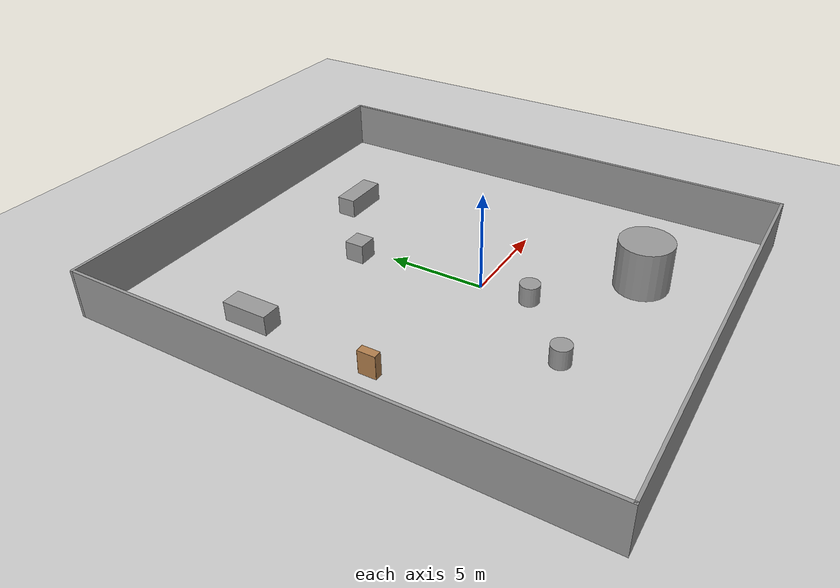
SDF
<sdf version="1.7">
 <world name="default">
  <light name="sun" type="directional">
   <cast_shadows>0</cast_shadows>
   <pose>0 0 10 0 -0 0</pose>
   <diffuse>0.8 0.8 0.8 1</diffuse>
   <specular>0.2 0.2 0.2 1</specular>
   <attenuation>
    <range>1000</range>
    <constant>0.9</constant>
    <linear>0.01</linear>
    <quadratic>0.001</quadratic>
   </attenuation>
   <direction>-0.5 0.1 -0.9</direction>
   <spot><inner_angle>0</inner_angle><outer_angle>0</outer_angle><falloff>0</falloff></spot>
  </light>
  <model name="ground_plane">
   <static>1</static>
   <link name="link">
    <collision name="collision">
     <geometry><plane><normal>0 0 1</normal><size>100 100</size></plane></geometry>
     <surface>
      <contact><collide_bitmask>65535</collide_bitmask></contact>
      <friction><ode><mu>100</mu><mu2>50</mu2></ode></friction>
     </surface>
    </collision>
    <visual name="visual">
     <cast_shadows>0</cast_shadows>
     <geometry><plane><normal>0 0 1</normal><size>100 100</size></plane></geometry>
     <material>
      <script><uri>file://media/materials/scripts/gazebo.material</uri><name>Gazebo/Grey</name></script>
     </material>
    </visual>
   </link>
  </model>
  <gravity>0 0 -9.8</gravity>
  <physics type="ode">
   <max_step_size>0.001</max_step_size>
   <real_time_factor>1</real_time_factor>
   <real_time_update_rate>1000</real_time_update_rate>
  </physics>
  <scene>
   <ambient>0.4 0.4 0.4 1</ambient>
   <background>0.7 0.7 0.7 1</background>
   <shadows>0</shadows>
   <origin_visual>0</origin_visual>
  </scene>
  <audio><device>default</device></audio>
  <spherical_coordinates>
   <surface_model>EARTH_WGS84</surface_model>
   <latitude_deg>0</latitude_deg>
   <longitude_deg>0</longitude_deg>
   <elevation>0</elevation>
   <heading_deg>0</heading_deg>
  </spherical_coordinates>
  <model name="bookshelf">
   <static>1</static>
   <link name="link">
    <inertial><mass>1</mass></inertial>
    <collision name="back">
     <pose>0 0.005 0.6 0 -0 0</pose>
     <geometry><box><size>0.9 0.01 1.2</size></box></geometry>
    </collision>
    <visual name="visual1">
     <pose>0 0.005 0.6 0 -0 0</pose>
     <geometry><box><size>0.9 0.01 1.2</size></box></geometry>
     <material>
      <script><uri>file://media/materials/scripts/gazebo.material</uri><name>Gazebo/Wood</name></script>
     </material>
    </visual>
    <collision name="left_side">
     <pose>0.45 -0.195 0.6 0 -0 0</pose>
     <geometry><box><size>0.02 0.4 1.2</size></box></geometry>
    </collision>
    <visual name="visual2">
     <pose>0.45 -0.195 0.6 0 -0 0</pose>
     <geometry><box><size>0.02 0.4 1.2</size></box></geometry>
     <material>
      <script><uri>file://media/materials/scripts/gazebo.material</uri><name>Gazebo/Wood</name></script>
     </material>
    </visual>
    <collision name="right_side">
     <pose>-0.45 -0.195 0.6 0 -0 0</pose>
     <geometry><box><size>0.02 0.4 1.2</size></box></geometry>
    </collision>
    <visual name="visual3">
     <pose>-0.45 -0.195 0.6 0 -0 0</pose>
     <geometry><box><size>0.02 0.4 1.2</size></box></geometry>
     <material>
      <script><uri>file://media/materials/scripts/gazebo.material</uri><name>Gazebo/Wood</name></script>
     </material>
    </visual>
    <collision name="bottom">
     <pose>0 -0.195 0.03 0 -0 0</pose>
     <geometry><box><size>0.88 0.4 0.06</size></box></geometry>
    </collision>
    <visual name="visual4">
     <pose>0 -0.195 0.03 0 -0 0</pose>
     <geometry><box><size>0.88 0.4 0.06</size></box></geometry>
     <material>
      <script><uri>file://media/materials/scripts/gazebo.material</uri><name>Gazebo/Wood</name></script>
     </material>
    </visual>
    <collision name="top">
     <pose>0 -0.195 1.19 0 -0 0</pose>
     <geometry><box><size>0.88 0.4 0.02</size></box></geometry>
    </collision>
    <visual name="visual5">
     <pose>0 -0.195 1.19 0 -0 0</pose>
     <geometry><box><size>0.88 0.4 0.02</size></box></geometry>
     <material>
      <script><uri>file://media/materials/scripts/gazebo.material</uri><name>Gazebo/Wood</name></script>
     </material>
    </visual>
    <collision name="low_shelf">
     <pose>0 -0.195 0.43 0 -0 0</pose>
     <geometry><box><size>0.88 0.4 0.02</size></box></geometry>
    </collision>
    <visual name="visual6">
     <pose>0 -0.195 0.43 0 -0 0</pose>
     <geometry><box><size>0.88 0.4 0.02</size></box></geometry>
     <material>
      <script><uri>file://media/materials/scripts/gazebo.material</uri><name>Gazebo/Wood</name></script>
     </material>
    </visual>
    <collision name="high_shelf">
     <pose>0 -0.195 0.8 0 -0 0</pose>
     <geometry><box><size>0.88 0.4 0.02</size></box></geometry>
    </collision>
    <visual name="visual7">
     <pose>0 -0.195 0.8 0 -0 0</pose>
     <geometry><box><size>0.88 0.4 0.02</size></box></geometry>
     <material>
      <script><uri>file://media/materials/scripts/gazebo.material</uri><name>Gazebo/Wood</name></script>
     </material>
    </visual>
   </link>
   <pose>-8.06127 1.00754 0 0 -0 1.57611</pose>
  </model>
  <model name="small_room">
   <pose>-0.133591 1.6178 0 0 -0 0</pose>
   <link name="Wall_37">
    <collision name="Wall_37_Collision">
     <geometry><box><size>26 0.15 2.5</size></box></geometry>
     <pose>0 0 1.25 0 -0 0</pose>
    </collision>
    <visual name="Wall_37_Visual">
     <pose>0 0 1.25 0 -0 0</pose>
     <geometry><box><size>26 0.15 2.5</size></box></geometry>
     <material>
      <script><uri>file://media/materials/scripts/gazebo.material</uri><name>Gazebo/Grey</name></script>
      <ambient>1 1 1 1</ambient>
     </material>
     <meta><layer>0</layer></meta>
    </visual>
    <pose>-10.925 -0 0 0 -0 -1.5708</pose>
   </link>
   <link name="Wall_38">
    <collision name="Wall_38_Collision">
     <geometry><box><size>22 0.15 2.5</size></box></geometry>
     <pose>0 0 1.25 0 -0 0</pose>
    </collision>
    <visual name="Wall_38_Visual">
     <pose>0 0 1.25 0 -0 0</pose>
     <geometry><box><size>22 0.15 2.5</size></box></geometry>
     <material>
      <script><uri>file://media/materials/scripts/gazebo.material</uri><name>Gazebo/Grey</name></script>
      <ambient>1 1 1 1</ambient>
     </material>
     <meta><layer>0</layer></meta>
    </visual>
    <pose>0 -12.925 0 0 -0 0</pose>
   </link>
   <link name="Wall_39">
    <collision name="Wall_39_Collision">
     <geometry><box><size>26 0.15 2.5</size></box></geometry>
     <pose>0 0 1.25 0 -0 0</pose>
    </collision>
    <visual name="Wall_39_Visual">
     <pose>0 0 1.25 0 -0 0</pose>
     <geometry><box><size>26 0.15 2.5</size></box></geometry>
     <material>
      <script><uri>file://media/materials/scripts/gazebo.material</uri><name>Gazebo/Grey</name></script>
      <ambient>1 1 1 1</ambient>
     </material>
     <meta><layer>0</layer></meta>
    </visual>
    <pose>10.925 -0 0 0 -0 1.5708</pose>
   </link>
   <link name="Wall_40">
    <collision name="Wall_40_Collision">
     <geometry><box><size>22 0.15 2.5</size></box></geometry>
     <pose>0 0 1.25 0 -0 0</pose>
    </collision>
    <visual name="Wall_40_Visual">
     <pose>0 0 1.25 0 -0 0</pose>
     <geometry><box><size>22 0.15 2.5</size></box></geometry>
     <material>
      <script><uri>file://media/materials/scripts/gazebo.material</uri><name>Gazebo/Grey</name></script>
      <ambient>1 1 1 1</ambient>
     </material>
     <meta><layer>0</layer></meta>
    </visual>
    <pose>0 12.925 0 0 -0 3.14159</pose>
   </link>
   <static>1</static>
  </model>
  <magnetic_field>6e-06 2.3e-05 -4.2e-05</magnetic_field>
  <atmosphere type="adiabatic"/>
  <model name="unit_cylinder">
   <pose>0.121401 -2.50056 0.499997 3e-06 4e-06 -0</pose>
   <link name="link">
    <inertial>
     <mass>1</mass>
     <inertia><ixx>0.145833</ixx><ixy>0</ixy><ixz>0</ixz><iyy>0.145833</iyy><iyz>0</iyz><izz>0.125</izz></inertia>
    </inertial>
    <collision name="collision">
     <geometry><cylinder><radius>0.5</radius><length>1</length></cylinder></geometry>
    </collision>
    <visual name="visual">
     <geometry><cylinder><radius>0.5</radius><length>1</length></cylinder></geometry>
     <material>
      <script><name>Gazebo/Grey</name><uri>file://media/materials/scripts/gazebo.material</uri></script>
     </material>
    </visual>
   </link>
  </model>
  <model name="unit_box">
   <pose>-0.654514 6.57786 0.5 0 -0 0</pose>
   <link name="link">
    <inertial>
     <mass>1</mass>
     <inertia>
      <ixx>0.166667</ixx>
      <ixy>0</ixy>
      <ixz>0</ixz>
      <iyy>0.166667</iyy>
      <iyz>0</iyz>
      <izz>0.166667</izz>
     </inertia>
    </inertial>
    <collision name="collision"><geometry><box><size>1 1 1</size></box></geometry></collision>
    <visual name="visual">
     <geometry><box><size>1 1 1</size></box></geometry>
     <material>
      <script><name>Gazebo/Grey</name><uri>file://media/materials/scripts/gazebo.material</uri></script>
     </material>
    </visual>
   </link>
  </model>
  <model name="unit_cylinder_0">
   <pose>-3.29031 -5.5623 0.499997 3e-06 4e-06 -0</pose>
   <link name="link">
    <inertial>
     <mass>1</mass>
     <inertia><ixx>0.145833</ixx><ixy>0</ixy><ixz>0</ixz><iyy>0.145833</iyy><iyz>0</iyz><izz>0.125</izz></inertia>
    </inertial>
    <collision name="collision">
     <geometry><cylinder><radius>0.5</radius><length>1</length></cylinder></geometry>
    </collision>
    <visual name="visual">
     <geometry><cylinder><radius>0.5</radius><length>1</length></cylinder></geometry>
     <material>
      <script><name>Gazebo/Grey</name><uri>file://media/materials/scripts/gazebo.material</uri></script>
     </material>
    </visual>
   </link>
  </model>
  <model name="unit_box_0">
   <pose>3.64962 9.69064 0.49995 0 -4.1e-05 0</pose>
   <link name="link">
    <inertial>
     <mass>1</mass>
     <inertia>
      <ixx>0.166667</ixx>
      <ixy>0</ixy>
      <ixz>0</ixz>
      <iyy>0.166667</iyy>
      <iyz>0</iyz>
      <izz>0.166667</izz>
     </inertia>
    </inertial>
    <collision name="collision"><geometry><box><size>2.40298 1 1</size></box></geometry></collision>
    <visual name="visual">
     <geometry><box><size>2.40298 1 1</size></box></geometry>
     <material>
      <script><name>Gazebo/Grey</name><uri>file://media/materials/scripts/gazebo.material</uri></script>
     </material>
    </visual>
   </link>
  </model>
  <model name="unit_box_1">
   <pose>-7.57719 7.59611 0.499956 3.8e-05 -0 0</pose>
   <link name="link">
    <inertial>
     <mass>1</mass>
     <inertia>
      <ixx>0.166667</ixx>
      <ixy>0</ixy>
      <ixz>0</ixz>
      <iyy>0.166667</iyy>
      <iyz>0</iyz>
      <izz>0.166667</izz>
     </inertia>
    </inertial>
    <collision name="collision"><geometry><box><size>1 2.35967 1</size></box></geometry></collision>
    <visual name="visual">
     <geometry><box><size>1 2.35967 1</size></box></geometry>
     <material>
      <script><name>Gazebo/Grey</name><uri>file://media/materials/scripts/gazebo.material</uri></script>
     </material>
    </visual>
   </link>
  </model>
  <model name="unit_cylinder_1_clone">
   <pose>3.98185 -6.61014 1.25333 0 -0 3e-06</pose>
   <link name="link">
    <inertial>
     <mass>1</mass>
     <inertia><ixx>0.145833</ixx><ixy>0</ixy><ixz>0</ixz><iyy>0.145833</iyy><iyz>0</iyz><izz>0.125</izz></inertia>
    </inertial>
    <collision name="collision">
     <geometry><cylinder><radius>1.35468</radius><length>2.50666</length></cylinder></geometry>
    </collision>
    <visual name="visual">
     <geometry><cylinder><radius>1.35468</radius><length>2.50666</length></cylinder></geometry>
     <material>
      <script><name>Gazebo/Grey</name><uri>file://media/materials/scripts/gazebo.material</uri></script>
     </material>
    </visual>
   </link>
  </model>
 </world>
</sdf>
